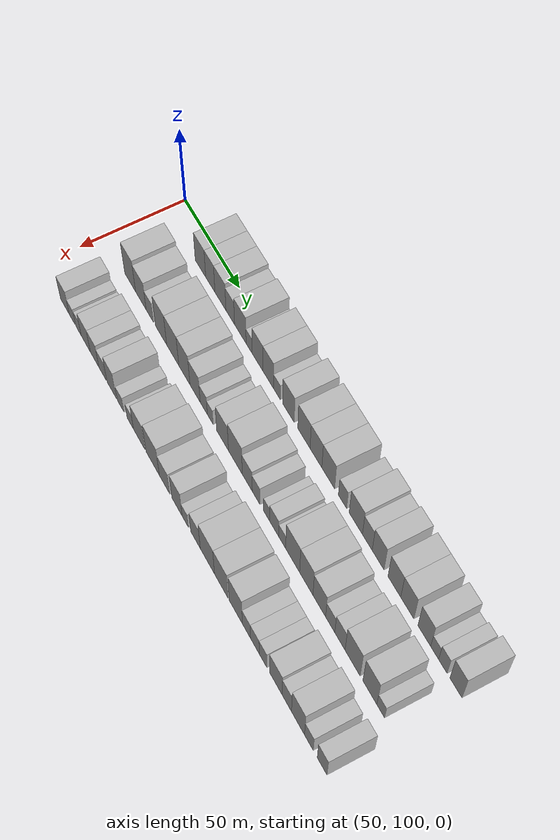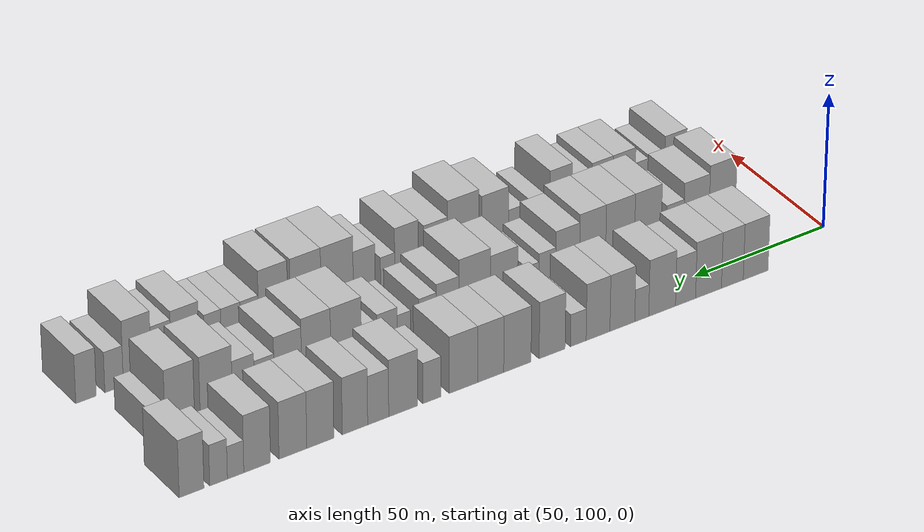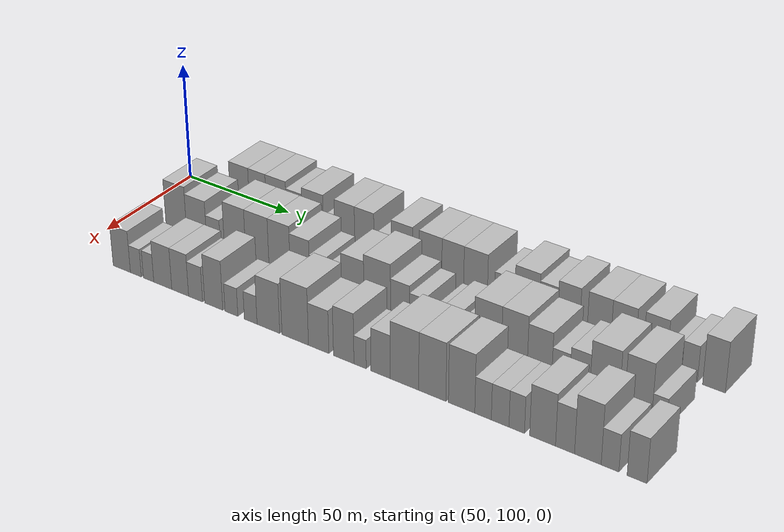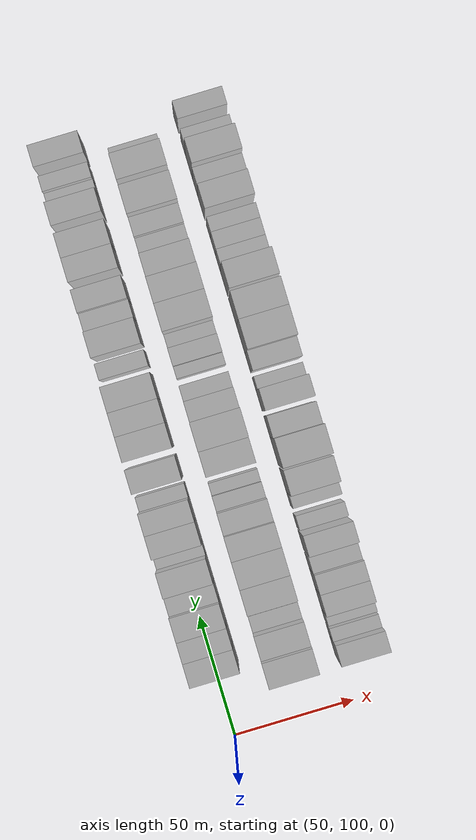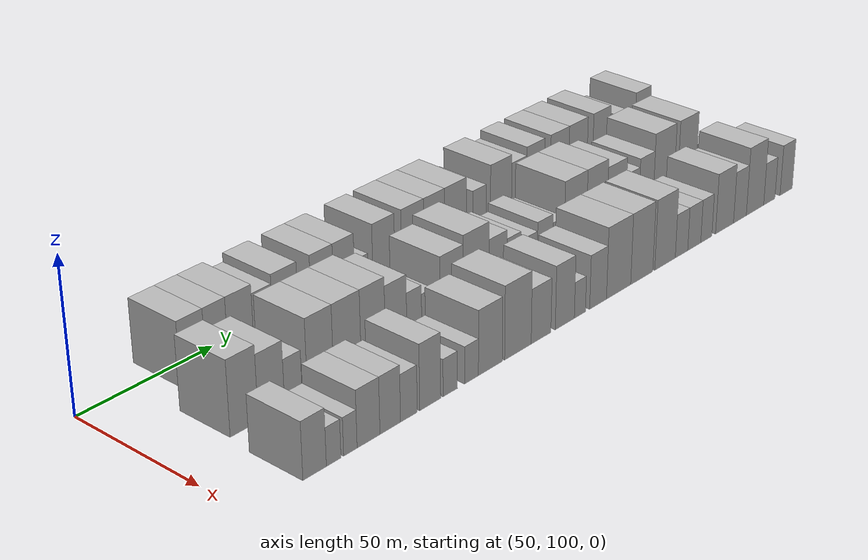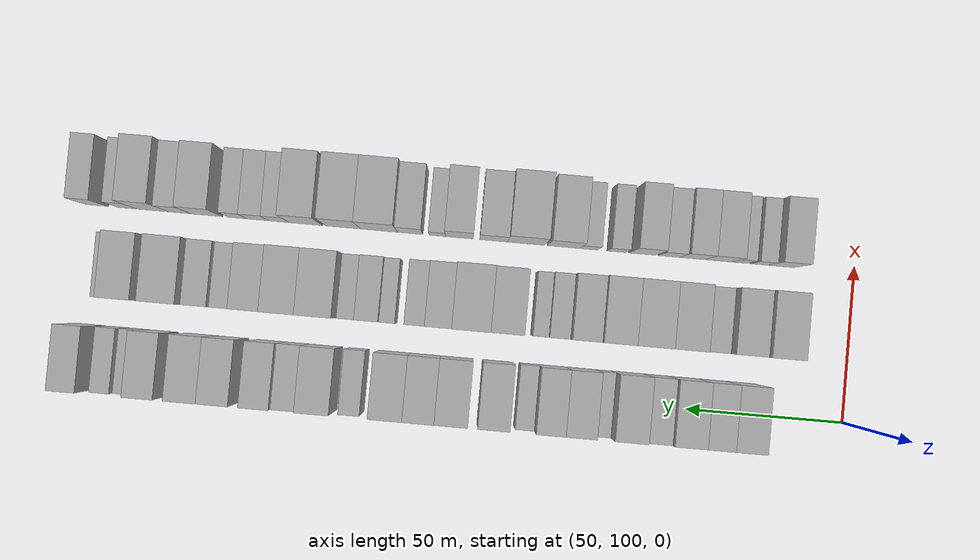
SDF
<sdf version="1.6">
 <world name="default">
  <model name="building_49">
   <static>1</static>
   <pose>50.0000 133.7880 0 0.000000 0.000000 0.000000</pose>
   <link name="link">
    <pose>0 0 10.50 0 0 0</pose>
    <collision name="collision"><geometry><box><size>20.0000 9.5616 21.0000</size></box></geometry></collision>
    <visual name="visual">
     <cast_shadows>0</cast_shadows>
     <geometry><box><size>20.0000 9.5616 21.0000</size></box></geometry>
     <material>
      <script>
       <uri>model://HANNAS_wall/materials/scripts</uri>
       <uri>model://HANNAS_wall/materials/textures</uri>
       <name>vrc/HANNAS_wall</name>
      </script>
     </material>
    </visual>
   </link>
  </model>
  <model name="building_50">
   <static>1</static>
   <pose>50.0000 142.7732 0 0.000000 0.000000 0.000000</pose>
   <link name="link">
    <pose>0 0 10.50 0 0 0</pose>
    <collision name="collision"><geometry><box><size>20.0000 8.4089 21.0000</size></box></geometry></collision>
    <visual name="visual">
     <cast_shadows>0</cast_shadows>
     <geometry><box><size>20.0000 8.4089 21.0000</size></box></geometry>
     <material>
      <script>
       <uri>model://HANNAS_wall/materials/scripts</uri>
       <uri>model://HANNAS_wall/materials/textures</uri>
       <name>vrc/HANNAS_wall</name>
      </script>
     </material>
    </visual>
   </link>
  </model>
  <model name="building_51">
   <static>1</static>
   <pose>50.0000 151.9215 0 0.000000 0.000000 0.000000</pose>
   <link name="link">
    <pose>0 0 10.50 0 0 0</pose>
    <collision name="collision"><geometry><box><size>20.0000 9.8877 21.0000</size></box></geometry></collision>
    <visual name="visual">
     <cast_shadows>0</cast_shadows>
     <geometry><box><size>20.0000 9.8877 21.0000</size></box></geometry>
     <material>
      <script>
       <uri>model://HANNAS_wall/materials/scripts</uri>
       <uri>model://HANNAS_wall/materials/textures</uri>
       <name>vrc/HANNAS_wall</name>
      </script>
     </material>
    </visual>
   </link>
  </model>
  <model name="building_52">
   <static>1</static>
   <pose>50.0000 160.6932 0 0.000000 0.000000 0.000000</pose>
   <link name="link">
    <pose>0 0 9.00 0 0 0</pose>
    <collision name="collision"><geometry><box><size>20.0000 7.6557 18.0000</size></box></geometry></collision>
    <visual name="visual">
     <cast_shadows>0</cast_shadows>
     <geometry><box><size>20.0000 7.6557 18.0000</size></box></geometry>
     <material>
      <script>
       <uri>model://HANNAS_wall/materials/scripts</uri>
       <uri>model://HANNAS_wall/materials/textures</uri>
       <name>vrc/HANNAS_wall</name>
      </script>
     </material>
    </visual>
   </link>
  </model>
  <model name="building_53">
   <static>1</static>
   <pose>50.0000 169.5946 0 0.000000 0.000000 0.000000</pose>
   <link name="link">
    <pose>0 0 10.50 0 0 0</pose>
    <collision name="collision"><geometry><box><size>20.0000 10.1472 21.0000</size></box></geometry></collision>
    <visual name="visual">
     <cast_shadows>0</cast_shadows>
     <geometry><box><size>20.0000 10.1472 21.0000</size></box></geometry>
     <material>
      <script>
       <uri>model://HANNAS_wall/materials/scripts</uri>
       <uri>model://HANNAS_wall/materials/textures</uri>
       <name>vrc/HANNAS_wall</name>
      </script>
     </material>
    </visual>
   </link>
  </model>
  <model name="building_54">
   <static>1</static>
   <pose>50.0000 177.3103 0 0.000000 0.000000 0.000000</pose>
   <link name="link">
    <pose>0 0 6.00 0 0 0</pose>
    <collision name="collision"><geometry><box><size>20.0000 5.2841 12.0000</size></box></geometry></collision>
    <visual name="visual">
     <cast_shadows>0</cast_shadows>
     <geometry><box><size>20.0000 5.2841 12.0000</size></box></geometry>
     <material>
      <script>
       <uri>model://HANNAS_wall/materials/scripts</uri>
       <uri>model://HANNAS_wall/materials/textures</uri>
       <name>vrc/HANNAS_wall</name>
      </script>
     </material>
    </visual>
   </link>
  </model>
  <model name="building_55">
   <static>1</static>
   <pose>50.0000 184.6372 0 0.000000 0.000000 0.000000</pose>
   <link name="link">
    <pose>0 0 10.50 0 0 0</pose>
    <collision name="collision"><geometry><box><size>20.0000 9.3697 21.0000</size></box></geometry></collision>
    <visual name="visual">
     <cast_shadows>0</cast_shadows>
     <geometry><box><size>20.0000 9.3697 21.0000</size></box></geometry>
     <material>
      <script>
       <uri>model://HANNAS_wall/materials/scripts</uri>
       <uri>model://HANNAS_wall/materials/textures</uri>
       <name>vrc/HANNAS_wall</name>
      </script>
     </material>
    </visual>
   </link>
  </model>
  <model name="building_56">
   <static>1</static>
   <pose>50.0000 193.7785 0 0.000000 0.000000 0.000000</pose>
   <link name="link">
    <pose>0 0 10.50 0 0 0</pose>
    <collision name="collision"><geometry><box><size>20.0000 8.9130 21.0000</size></box></geometry></collision>
    <visual name="visual">
     <cast_shadows>0</cast_shadows>
     <geometry><box><size>20.0000 8.9130 21.0000</size></box></geometry>
     <material>
      <script>
       <uri>model://HANNAS_wall/materials/scripts</uri>
       <uri>model://HANNAS_wall/materials/textures</uri>
       <name>vrc/HANNAS_wall</name>
      </script>
     </material>
    </visual>
   </link>
  </model>
  <model name="building_57">
   <static>1</static>
   <pose>50.0000 201.1518 0 0.000000 0.000000 0.000000</pose>
   <link name="link">
    <pose>0 0 6.00 0 0 0</pose>
    <collision name="collision"><geometry><box><size>20.0000 5.8336 12.0000</size></box></geometry></collision>
    <visual name="visual">
     <cast_shadows>0</cast_shadows>
     <geometry><box><size>20.0000 5.8336 12.0000</size></box></geometry>
     <material>
      <script>
       <uri>model://HANNAS_wall/materials/scripts</uri>
       <uri>model://HANNAS_wall/materials/textures</uri>
       <name>vrc/HANNAS_wall</name>
      </script>
     </material>
    </visual>
   </link>
  </model>
  <model name="building_58">
   <static>1</static>
   <pose>50.0000 210.8988 0 0.000000 0.000000 0.000000</pose>
   <link name="link">
    <pose>0 0 10.50 0 0 0</pose>
    <collision name="collision"><geometry><box><size>20.0000 9.6604 21.0000</size></box></geometry></collision>
    <visual name="visual">
     <cast_shadows>0</cast_shadows>
     <geometry><box><size>20.0000 9.6604 21.0000</size></box></geometry>
     <material>
      <script>
       <uri>model://HANNAS_wall/materials/scripts</uri>
       <uri>model://HANNAS_wall/materials/textures</uri>
       <name>vrc/HANNAS_wall</name>
      </script>
     </material>
    </visual>
   </link>
  </model>
  <model name="building_59">
   <static>1</static>
   <pose>50.0000 223.7719 0 0.000000 0.000000 0.000000</pose>
   <link name="link">
    <pose>0 0 10.50 0 0 0</pose>
    <collision name="collision"><geometry><box><size>20.0000 10.0858 21.0000</size></box></geometry></collision>
    <visual name="visual">
     <cast_shadows>0</cast_shadows>
     <geometry><box><size>20.0000 10.0858 21.0000</size></box></geometry>
     <material>
      <script>
       <uri>model://HANNAS_wall/materials/scripts</uri>
       <uri>model://HANNAS_wall/materials/textures</uri>
       <name>vrc/HANNAS_wall</name>
      </script>
     </material>
    </visual>
   </link>
  </model>
  <model name="building_60">
   <static>1</static>
   <pose>50.0000 233.6276 0 0.000000 0.000000 0.000000</pose>
   <link name="link">
    <pose>0 0 10.50 0 0 0</pose>
    <collision name="collision"><geometry><box><size>20.0000 9.6257 21.0000</size></box></geometry></collision>
    <visual name="visual">
     <cast_shadows>0</cast_shadows>
     <geometry><box><size>20.0000 9.6257 21.0000</size></box></geometry>
     <material>
      <script>
       <uri>model://HANNAS_wall/materials/scripts</uri>
       <uri>model://HANNAS_wall/materials/textures</uri>
       <name>vrc/HANNAS_wall</name>
      </script>
     </material>
    </visual>
   </link>
  </model>
  <model name="building_61">
   <static>1</static>
   <pose>50.0000 243.5973 0 0.000000 0.000000 0.000000</pose>
   <link name="link">
    <pose>0 0 10.50 0 0 0</pose>
    <collision name="collision"><geometry><box><size>20.0000 10.3136 21.0000</size></box></geometry></collision>
    <visual name="visual">
     <cast_shadows>0</cast_shadows>
     <geometry><box><size>20.0000 10.3136 21.0000</size></box></geometry>
     <material>
      <script>
       <uri>model://HANNAS_wall/materials/scripts</uri>
       <uri>model://HANNAS_wall/materials/textures</uri>
       <name>vrc/HANNAS_wall</name>
      </script>
     </material>
    </visual>
   </link>
  </model>
  <model name="building_62">
   <static>1</static>
   <pose>50.0000 255.0372 0 0.000000 0.000000 0.000000</pose>
   <link name="link">
    <pose>0 0 7.50 0 0 0</pose>
    <collision name="collision"><geometry><box><size>20.0000 6.5662 15.0000</size></box></geometry></collision>
    <visual name="visual">
     <cast_shadows>0</cast_shadows>
     <geometry><box><size>20.0000 6.5662 15.0000</size></box></geometry>
     <material>
      <script>
       <uri>model://HANNAS_wall/materials/scripts</uri>
       <uri>model://HANNAS_wall/materials/textures</uri>
       <name>vrc/HANNAS_wall</name>
      </script>
     </material>
    </visual>
   </link>
  </model>
  <model name="building_63">
   <static>1</static>
   <pose>50.0000 265.5220 0 0.000000 0.000000 0.000000</pose>
   <link name="link">
    <pose>0 0 10.50 0 0 0</pose>
    <collision name="collision"><geometry><box><size>20.0000 10.4033 21.0000</size></box></geometry></collision>
    <visual name="visual">
     <cast_shadows>0</cast_shadows>
     <geometry><box><size>20.0000 10.4033 21.0000</size></box></geometry>
     <material>
      <script>
       <uri>model://HANNAS_wall/materials/scripts</uri>
       <uri>model://HANNAS_wall/materials/textures</uri>
       <name>vrc/HANNAS_wall</name>
      </script>
     </material>
    </visual>
   </link>
  </model>
  <model name="building_64">
   <static>1</static>
   <pose>50.0000 274.5095 0 0.000000 0.000000 0.000000</pose>
   <link name="link">
    <pose>0 0 9.00 0 0 0</pose>
    <collision name="collision"><geometry><box><size>20.0000 7.5716 18.0000</size></box></geometry></collision>
    <visual name="visual">
     <cast_shadows>0</cast_shadows>
     <geometry><box><size>20.0000 7.5716 18.0000</size></box></geometry>
     <material>
      <script>
       <uri>model://HANNAS_wall/materials/scripts</uri>
       <uri>model://HANNAS_wall/materials/textures</uri>
       <name>vrc/HANNAS_wall</name>
      </script>
     </material>
    </visual>
   </link>
  </model>
  <model name="building_65">
   <static>1</static>
   <pose>50.0000 282.8512 0 0.000000 0.000000 0.000000</pose>
   <link name="link">
    <pose>0 0 10.50 0 0 0</pose>
    <collision name="collision"><geometry><box><size>20.0000 9.1119 21.0000</size></box></geometry></collision>
    <visual name="visual">
     <cast_shadows>0</cast_shadows>
     <geometry><box><size>20.0000 9.1119 21.0000</size></box></geometry>
     <material>
      <script>
       <uri>model://HANNAS_wall/materials/scripts</uri>
       <uri>model://HANNAS_wall/materials/textures</uri>
       <name>vrc/HANNAS_wall</name>
      </script>
     </material>
    </visual>
   </link>
  </model>
  <model name="building_66">
   <static>1</static>
   <pose>50.0000 295.2261 0 0.000000 0.000000 0.000000</pose>
   <link name="link">
    <pose>0 0 10.50 0 0 0</pose>
    <collision name="collision"><geometry><box><size>20.0000 9.6378 21.0000</size></box></geometry></collision>
    <visual name="visual">
     <cast_shadows>0</cast_shadows>
     <geometry><box><size>20.0000 9.6378 21.0000</size></box></geometry>
     <material>
      <script>
       <uri>model://HANNAS_wall/materials/scripts</uri>
       <uri>model://HANNAS_wall/materials/textures</uri>
       <name>vrc/HANNAS_wall</name>
      </script>
     </material>
    </visual>
   </link>
  </model>
  <model name="building_67">
   <static>1</static>
   <pose>50.0000 304.9630 0 0.000000 0.000000 0.000000</pose>
   <link name="link">
    <pose>0 0 10.50 0 0 0</pose>
    <collision name="collision"><geometry><box><size>20.0000 9.8360 21.0000</size></box></geometry></collision>
    <visual name="visual">
     <cast_shadows>0</cast_shadows>
     <geometry><box><size>20.0000 9.8360 21.0000</size></box></geometry>
     <material>
      <script>
       <uri>model://HANNAS_wall/materials/scripts</uri>
       <uri>model://HANNAS_wall/materials/textures</uri>
       <name>vrc/HANNAS_wall</name>
      </script>
     </material>
    </visual>
   </link>
  </model>
  <model name="building_68">
   <static>1</static>
   <pose>50.0000 317.5712 0 0.000000 0.000000 0.000000</pose>
   <link name="link">
    <pose>0 0 10.50 0 0 0</pose>
    <collision name="collision"><geometry><box><size>20.0000 9.3803 21.0000</size></box></geometry></collision>
    <visual name="visual">
     <cast_shadows>0</cast_shadows>
     <geometry><box><size>20.0000 9.3803 21.0000</size></box></geometry>
     <material>
      <script>
       <uri>model://HANNAS_wall/materials/scripts</uri>
       <uri>model://HANNAS_wall/materials/textures</uri>
       <name>vrc/HANNAS_wall</name>
      </script>
     </material>
    </visual>
   </link>
  </model>
  <model name="building_69">
   <static>1</static>
   <pose>50.0000 325.1428 0 0.000000 0.000000 0.000000</pose>
   <link name="link">
    <pose>0 0 6.00 0 0 0</pose>
    <collision name="collision"><geometry><box><size>20.0000 5.7629 12.0000</size></box></geometry></collision>
    <visual name="visual">
     <cast_shadows>0</cast_shadows>
     <geometry><box><size>20.0000 5.7629 12.0000</size></box></geometry>
     <material>
      <script>
       <uri>model://HANNAS_wall/materials/scripts</uri>
       <uri>model://HANNAS_wall/materials/textures</uri>
       <name>vrc/HANNAS_wall</name>
      </script>
     </material>
    </visual>
   </link>
  </model>
  <model name="building_70">
   <static>1</static>
   <pose>50.0000 331.1124 0 0.000000 0.000000 0.000000</pose>
   <link name="link">
    <pose>0 0 7.50 0 0 0</pose>
    <collision name="collision"><geometry><box><size>20.0000 6.1764 15.0000</size></box></geometry></collision>
    <visual name="visual">
     <cast_shadows>0</cast_shadows>
     <geometry><box><size>20.0000 6.1764 15.0000</size></box></geometry>
     <material>
      <script>
       <uri>model://HANNAS_wall/materials/scripts</uri>
       <uri>model://HANNAS_wall/materials/textures</uri>
       <name>vrc/HANNAS_wall</name>
      </script>
     </material>
    </visual>
   </link>
  </model>
  <model name="building_71">
   <static>1</static>
   <pose>50.0000 340.5197 0 0.000000 0.000000 0.000000</pose>
   <link name="link">
    <pose>0 0 10.50 0 0 0</pose>
    <collision name="collision"><geometry><box><size>20.0000 8.6381 21.0000</size></box></geometry></collision>
    <visual name="visual">
     <cast_shadows>0</cast_shadows>
     <geometry><box><size>20.0000 8.6381 21.0000</size></box></geometry>
     <material>
      <script>
       <uri>model://HANNAS_wall/materials/scripts</uri>
       <uri>model://HANNAS_wall/materials/textures</uri>
       <name>vrc/HANNAS_wall</name>
      </script>
     </material>
    </visual>
   </link>
  </model>
  <model name="building_125">
   <static>1</static>
   <pose>79.0000 125.9380 0 0.000000 0.000000 0.000000</pose>
   <link name="link">
    <pose>0 0 12.00 0 0 0</pose>
    <collision name="collision"><geometry><box><size>20.0000 10.3051 24.0000</size></box></geometry></collision>
    <visual name="visual">
     <cast_shadows>0</cast_shadows>
     <geometry><box><size>20.0000 10.3051 24.0000</size></box></geometry>
     <material>
      <script>
       <uri>model://HANNAS_wall/materials/scripts</uri>
       <uri>model://HANNAS_wall/materials/textures</uri>
       <name>vrc/HANNAS_wall</name>
      </script>
     </material>
    </visual>
   </link>
  </model>
  <model name="building_126">
   <static>1</static>
   <pose>79.0000 136.0108 0 0.000000 0.000000 0.000000</pose>
   <link name="link">
    <pose>0 0 10.50 0 0 0</pose>
    <collision name="collision"><geometry><box><size>20.0000 9.8404 21.0000</size></box></geometry></collision>
    <visual name="visual">
     <cast_shadows>0</cast_shadows>
     <geometry><box><size>20.0000 9.8404 21.0000</size></box></geometry>
     <material>
      <script>
       <uri>model://HANNAS_wall/materials/scripts</uri>
       <uri>model://HANNAS_wall/materials/textures</uri>
       <name>vrc/HANNAS_wall</name>
      </script>
     </material>
    </visual>
   </link>
  </model>
  <model name="building_127">
   <static>1</static>
   <pose>79.0000 144.2754 0 0.000000 0.000000 0.000000</pose>
   <link name="link">
    <pose>0 0 7.50 0 0 0</pose>
    <collision name="collision"><geometry><box><size>20.0000 6.6889 15.0000</size></box></geometry></collision>
    <visual name="visual">
     <cast_shadows>0</cast_shadows>
     <geometry><box><size>20.0000 6.6889 15.0000</size></box></geometry>
     <material>
      <script>
       <uri>model://HANNAS_wall/materials/scripts</uri>
       <uri>model://HANNAS_wall/materials/textures</uri>
       <name>vrc/HANNAS_wall</name>
      </script>
     </material>
    </visual>
   </link>
  </model>
  <model name="building_128">
   <static>1</static>
   <pose>79.0000 154.7513 0 0.000000 0.000000 0.000000</pose>
   <link name="link">
    <pose>0 0 12.00 0 0 0</pose>
    <collision name="collision"><geometry><box><size>20.0000 10.2628 24.0000</size></box></geometry></collision>
    <visual name="visual">
     <cast_shadows>0</cast_shadows>
     <geometry><box><size>20.0000 10.2628 24.0000</size></box></geometry>
     <material>
      <script>
       <uri>model://HANNAS_wall/materials/scripts</uri>
       <uri>model://HANNAS_wall/materials/textures</uri>
       <name>vrc/HANNAS_wall</name>
      </script>
     </material>
    </visual>
   </link>
  </model>
  <model name="building_129">
   <static>1</static>
   <pose>79.0000 165.3907 0 0.000000 0.000000 0.000000</pose>
   <link name="link">
    <pose>0 0 12.00 0 0 0</pose>
    <collision name="collision"><geometry><box><size>20.0000 11.0159 24.0000</size></box></geometry></collision>
    <visual name="visual">
     <cast_shadows>0</cast_shadows>
     <geometry><box><size>20.0000 11.0159 24.0000</size></box></geometry>
     <material>
      <script>
       <uri>model://HANNAS_wall/materials/scripts</uri>
       <uri>model://HANNAS_wall/materials/textures</uri>
       <name>vrc/HANNAS_wall</name>
      </script>
     </material>
    </visual>
   </link>
  </model>
  <model name="building_130">
   <static>1</static>
   <pose>79.0000 175.8826 0 0.000000 0.000000 0.000000</pose>
   <link name="link">
    <pose>0 0 12.00 0 0 0</pose>
    <collision name="collision"><geometry><box><size>20.0000 9.9679 24.0000</size></box></geometry></collision>
    <visual name="visual">
     <cast_shadows>0</cast_shadows>
     <geometry><box><size>20.0000 9.9679 24.0000</size></box></geometry>
     <material>
      <script>
       <uri>model://HANNAS_wall/materials/scripts</uri>
       <uri>model://HANNAS_wall/materials/textures</uri>
       <name>vrc/HANNAS_wall</name>
      </script>
     </material>
    </visual>
   </link>
  </model>
  <model name="building_131">
   <static>1</static>
   <pose>79.0000 185.3609 0 0.000000 0.000000 0.000000</pose>
   <link name="link">
    <pose>0 0 10.50 0 0 0</pose>
    <collision name="collision"><geometry><box><size>20.0000 8.9887 21.0000</size></box></geometry></collision>
    <visual name="visual">
     <cast_shadows>0</cast_shadows>
     <geometry><box><size>20.0000 8.9887 21.0000</size></box></geometry>
     <material>
      <script>
       <uri>model://HANNAS_wall/materials/scripts</uri>
       <uri>model://HANNAS_wall/materials/textures</uri>
       <name>vrc/HANNAS_wall</name>
      </script>
     </material>
    </visual>
   </link>
  </model>
  <model name="building_132">
   <static>1</static>
   <pose>79.0000 193.0221 0 0.000000 0.000000 0.000000</pose>
   <link name="link">
    <pose>0 0 7.50 0 0 0</pose>
    <collision name="collision"><geometry><box><size>20.0000 6.3335 15.0000</size></box></geometry></collision>
    <visual name="visual">
     <cast_shadows>0</cast_shadows>
     <geometry><box><size>20.0000 6.3335 15.0000</size></box></geometry>
     <material>
      <script>
       <uri>model://HANNAS_wall/materials/scripts</uri>
       <uri>model://HANNAS_wall/materials/textures</uri>
       <name>vrc/HANNAS_wall</name>
      </script>
     </material>
    </visual>
   </link>
  </model>
  <model name="building_133">
   <static>1</static>
   <pose>79.0000 198.6765 0 0.000000 0.000000 0.000000</pose>
   <link name="link">
    <pose>0 0 6.00 0 0 0</pose>
    <collision name="collision"><geometry><box><size>20.0000 4.9754 12.0000</size></box></geometry></collision>
    <visual name="visual">
     <cast_shadows>0</cast_shadows>
     <geometry><box><size>20.0000 4.9754 12.0000</size></box></geometry>
     <material>
      <script>
       <uri>model://HANNAS_wall/materials/scripts</uri>
       <uri>model://HANNAS_wall/materials/textures</uri>
       <name>vrc/HANNAS_wall</name>
      </script>
     </material>
    </visual>
   </link>
  </model>
  <model name="building_134">
   <static>1</static>
   <pose>79.0000 209.2695 0 0.000000 0.000000 0.000000</pose>
   <link name="link">
    <pose>0 0 10.50 0 0 0</pose>
    <collision name="collision"><geometry><box><size>20.0000 10.2107 21.0000</size></box></geometry></collision>
    <visual name="visual">
     <cast_shadows>0</cast_shadows>
     <geometry><box><size>20.0000 10.2107 21.0000</size></box></geometry>
     <material>
      <script>
       <uri>model://HANNAS_wall/materials/scripts</uri>
       <uri>model://HANNAS_wall/materials/textures</uri>
       <name>vrc/HANNAS_wall</name>
      </script>
     </material>
    </visual>
   </link>
  </model>
  <model name="building_135">
   <static>1</static>
   <pose>79.0000 220.2310 0 0.000000 0.000000 0.000000</pose>
   <link name="link">
    <pose>0 0 12.00 0 0 0</pose>
    <collision name="collision"><geometry><box><size>20.0000 11.7123 24.0000</size></box></geometry></collision>
    <visual name="visual">
     <cast_shadows>0</cast_shadows>
     <geometry><box><size>20.0000 11.7123 24.0000</size></box></geometry>
     <material>
      <script>
       <uri>model://HANNAS_wall/materials/scripts</uri>
       <uri>model://HANNAS_wall/materials/textures</uri>
       <name>vrc/HANNAS_wall</name>
      </script>
     </material>
    </visual>
   </link>
  </model>
  <model name="building_136">
   <static>1</static>
   <pose>79.0000 230.2468 0 0.000000 0.000000 0.000000</pose>
   <link name="link">
    <pose>0 0 9.00 0 0 0</pose>
    <collision name="collision"><geometry><box><size>20.0000 8.3191 18.0000</size></box></geometry></collision>
    <visual name="visual">
     <cast_shadows>0</cast_shadows>
     <geometry><box><size>20.0000 8.3191 18.0000</size></box></geometry>
     <material>
      <script>
       <uri>model://HANNAS_wall/materials/scripts</uri>
       <uri>model://HANNAS_wall/materials/textures</uri>
       <name>vrc/HANNAS_wall</name>
      </script>
     </material>
    </visual>
   </link>
  </model>
  <model name="building_137">
   <static>1</static>
   <pose>79.0000 237.6032 0 0.000000 0.000000 0.000000</pose>
   <link name="link">
    <pose>0 0 7.50 0 0 0</pose>
    <collision name="collision"><geometry><box><size>20.0000 6.3937 15.0000</size></box></geometry></collision>
    <visual name="visual">
     <cast_shadows>0</cast_shadows>
     <geometry><box><size>20.0000 6.3937 15.0000</size></box></geometry>
     <material>
      <script>
       <uri>model://HANNAS_wall/materials/scripts</uri>
       <uri>model://HANNAS_wall/materials/textures</uri>
       <name>vrc/HANNAS_wall</name>
      </script>
     </material>
    </visual>
   </link>
  </model>
  <model name="building_138">
   <static>1</static>
   <pose>79.0000 246.2719 0 0.000000 0.000000 0.000000</pose>
   <link name="link">
    <pose>0 0 6.00 0 0 0</pose>
    <collision name="collision"><geometry><box><size>20.0000 4.9438 12.0000</size></box></geometry></collision>
    <visual name="visual">
     <cast_shadows>0</cast_shadows>
     <geometry><box><size>20.0000 4.9438 12.0000</size></box></geometry>
     <material>
      <script>
       <uri>model://HANNAS_wall/materials/scripts</uri>
       <uri>model://HANNAS_wall/materials/textures</uri>
       <name>vrc/HANNAS_wall</name>
      </script>
     </material>
    </visual>
   </link>
  </model>
  <model name="building_139">
   <static>1</static>
   <pose>79.0000 252.4389 0 0.000000 0.000000 0.000000</pose>
   <link name="link">
    <pose>0 0 7.50 0 0 0</pose>
    <collision name="collision"><geometry><box><size>20.0000 7.3902 15.0000</size></box></geometry></collision>
    <visual name="visual">
     <cast_shadows>0</cast_shadows>
     <geometry><box><size>20.0000 7.3902 15.0000</size></box></geometry>
     <material>
      <script>
       <uri>model://HANNAS_wall/materials/scripts</uri>
       <uri>model://HANNAS_wall/materials/textures</uri>
       <name>vrc/HANNAS_wall</name>
      </script>
     </material>
    </visual>
   </link>
  </model>
  <model name="building_140">
   <static>1</static>
   <pose>79.0000 258.9842 0 0.000000 0.000000 0.000000</pose>
   <link name="link">
    <pose>0 0 6.00 0 0 0</pose>
    <collision name="collision"><geometry><box><size>20.0000 5.7004 12.0000</size></box></geometry></collision>
    <visual name="visual">
     <cast_shadows>0</cast_shadows>
     <geometry><box><size>20.0000 5.7004 12.0000</size></box></geometry>
     <material>
      <script>
       <uri>model://HANNAS_wall/materials/scripts</uri>
       <uri>model://HANNAS_wall/materials/textures</uri>
       <name>vrc/HANNAS_wall</name>
      </script>
     </material>
    </visual>
   </link>
  </model>
  <model name="building_141">
   <static>1</static>
   <pose>79.0000 267.4060 0 0.000000 0.000000 0.000000</pose>
   <link name="link">
    <pose>0 0 12.00 0 0 0</pose>
    <collision name="collision"><geometry><box><size>20.0000 11.1433 24.0000</size></box></geometry></collision>
    <visual name="visual">
     <cast_shadows>0</cast_shadows>
     <geometry><box><size>20.0000 11.1433 24.0000</size></box></geometry>
     <material>
      <script>
       <uri>model://HANNAS_wall/materials/scripts</uri>
       <uri>model://HANNAS_wall/materials/textures</uri>
       <name>vrc/HANNAS_wall</name>
      </script>
     </material>
    </visual>
   </link>
  </model>
  <model name="building_142">
   <static>1</static>
   <pose>79.0000 278.2455 0 0.000000 0.000000 0.000000</pose>
   <link name="link">
    <pose>0 0 12.00 0 0 0</pose>
    <collision name="collision"><geometry><box><size>20.0000 10.5357 24.0000</size></box></geometry></collision>
    <visual name="visual">
     <cast_shadows>0</cast_shadows>
     <geometry><box><size>20.0000 10.5357 24.0000</size></box></geometry>
     <material>
      <script>
       <uri>model://HANNAS_wall/materials/scripts</uri>
       <uri>model://HANNAS_wall/materials/textures</uri>
       <name>vrc/HANNAS_wall</name>
      </script>
     </material>
    </visual>
   </link>
  </model>
  <model name="building_143">
   <static>1</static>
   <pose>79.0000 288.4336 0 0.000000 0.000000 0.000000</pose>
   <link name="link">
    <pose>0 0 10.50 0 0 0</pose>
    <collision name="collision"><geometry><box><size>20.0000 9.8405 21.0000</size></box></geometry></collision>
    <visual name="visual">
     <cast_shadows>0</cast_shadows>
     <geometry><box><size>20.0000 9.8405 21.0000</size></box></geometry>
     <material>
      <script>
       <uri>model://HANNAS_wall/materials/scripts</uri>
       <uri>model://HANNAS_wall/materials/textures</uri>
       <name>vrc/HANNAS_wall</name>
      </script>
     </material>
    </visual>
   </link>
  </model>
  <model name="building_144">
   <static>1</static>
   <pose>79.0000 296.9004 0 0.000000 0.000000 0.000000</pose>
   <link name="link">
    <pose>0 0 7.50 0 0 0</pose>
    <collision name="collision"><geometry><box><size>20.0000 7.0930 15.0000</size></box></geometry></collision>
    <visual name="visual">
     <cast_shadows>0</cast_shadows>
     <geometry><box><size>20.0000 7.0930 15.0000</size></box></geometry>
     <material>
      <script>
       <uri>model://HANNAS_wall/materials/scripts</uri>
       <uri>model://HANNAS_wall/materials/textures</uri>
       <name>vrc/HANNAS_wall</name>
      </script>
     </material>
    </visual>
   </link>
  </model>
  <model name="building_145">
   <static>1</static>
   <pose>79.0000 304.3658 0 0.000000 0.000000 0.000000</pose>
   <link name="link">
    <pose>0 0 9.00 0 0 0</pose>
    <collision name="collision"><geometry><box><size>20.0000 7.8379 18.0000</size></box></geometry></collision>
    <visual name="visual">
     <cast_shadows>0</cast_shadows>
     <geometry><box><size>20.0000 7.8379 18.0000</size></box></geometry>
     <material>
      <script>
       <uri>model://HANNAS_wall/materials/scripts</uri>
       <uri>model://HANNAS_wall/materials/textures</uri>
       <name>vrc/HANNAS_wall</name>
      </script>
     </material>
    </visual>
   </link>
  </model>
  <model name="building_146">
   <static>1</static>
   <pose>79.0000 313.9953 0 0.000000 0.000000 0.000000</pose>
   <link name="link">
    <pose>0 0 12.00 0 0 0</pose>
    <collision name="collision"><geometry><box><size>20.0000 11.4211 24.0000</size></box></geometry></collision>
    <visual name="visual">
     <cast_shadows>0</cast_shadows>
     <geometry><box><size>20.0000 11.4211 24.0000</size></box></geometry>
     <material>
      <script>
       <uri>model://HANNAS_wall/materials/scripts</uri>
       <uri>model://HANNAS_wall/materials/textures</uri>
       <name>vrc/HANNAS_wall</name>
      </script>
     </material>
    </visual>
   </link>
  </model>
  <model name="building_147">
   <static>1</static>
   <pose>79.0000 326.8883 0 0.000000 0.000000 0.000000</pose>
   <link name="link">
    <pose>0 0 12.00 0 0 0</pose>
    <collision name="collision"><geometry><box><size>20.0000 10.3649 24.0000</size></box></geometry></collision>
    <visual name="visual">
     <cast_shadows>0</cast_shadows>
     <geometry><box><size>20.0000 10.3649 24.0000</size></box></geometry>
     <material>
      <script>
       <uri>model://HANNAS_wall/materials/scripts</uri>
       <uri>model://HANNAS_wall/materials/textures</uri>
       <name>vrc/HANNAS_wall</name>
      </script>
     </material>
    </visual>
   </link>
  </model>
  <model name="building_148">
   <static>1</static>
   <pose>79.0000 334.9313 0 0.000000 0.000000 0.000000</pose>
   <link name="link">
    <pose>0 0 6.00 0 0 0</pose>
    <collision name="collision"><geometry><box><size>20.0000 5.7211 12.0000</size></box></geometry></collision>
    <visual name="visual">
     <cast_shadows>0</cast_shadows>
     <geometry><box><size>20.0000 5.7211 12.0000</size></box></geometry>
     <material>
      <script>
       <uri>model://HANNAS_wall/materials/scripts</uri>
       <uri>model://HANNAS_wall/materials/textures</uri>
       <name>vrc/HANNAS_wall</name>
      </script>
     </material>
    </visual>
   </link>
  </model>
  <model name="building_193">
   <static>1</static>
   <pose>108.0000 123.5994 0 0.000000 0.000000 0.000000</pose>
   <link name="link">
    <pose>0 0 9.00 0 0 0</pose>
    <collision name="collision"><geometry><box><size>20.0000 8.5537 18.0000</size></box></geometry></collision>
    <visual name="visual">
     <cast_shadows>0</cast_shadows>
     <geometry><box><size>20.0000 8.5537 18.0000</size></box></geometry>
     <material>
      <script>
       <uri>model://HANNAS_wall/materials/scripts</uri>
       <uri>model://HANNAS_wall/materials/textures</uri>
       <name>vrc/HANNAS_wall</name>
      </script>
     </material>
    </visual>
   </link>
  </model>
  <model name="building_194">
   <static>1</static>
   <pose>108.0000 130.5719 0 0.000000 0.000000 0.000000</pose>
   <link name="link">
    <pose>0 0 6.00 0 0 0</pose>
    <collision name="collision"><geometry><box><size>20.0000 5.3914 12.0000</size></box></geometry></collision>
    <visual name="visual">
     <cast_shadows>0</cast_shadows>
     <geometry><box><size>20.0000 5.3914 12.0000</size></box></geometry>
     <material>
      <script>
       <uri>model://HANNAS_wall/materials/scripts</uri>
       <uri>model://HANNAS_wall/materials/textures</uri>
       <name>vrc/HANNAS_wall</name>
      </script>
     </material>
    </visual>
   </link>
  </model>
  <model name="building_195">
   <static>1</static>
   <pose>108.0000 136.7985 0 0.000000 0.000000 0.000000</pose>
   <link name="link">
    <pose>0 0 6.00 0 0 0</pose>
    <collision name="collision"><geometry><box><size>20.0000 5.0616 12.0000</size></box></geometry></collision>
    <visual name="visual">
     <cast_shadows>0</cast_shadows>
     <geometry><box><size>20.0000 5.0616 12.0000</size></box></geometry>
     <material>
      <script>
       <uri>model://HANNAS_wall/materials/scripts</uri>
       <uri>model://HANNAS_wall/materials/textures</uri>
       <name>vrc/HANNAS_wall</name>
      </script>
     </material>
    </visual>
   </link>
  </model>
  <model name="building_196">
   <static>1</static>
   <pose>108.0000 143.7020 0 0.000000 0.000000 0.000000</pose>
   <link name="link">
    <pose>0 0 9.00 0 0 0</pose>
    <collision name="collision"><geometry><box><size>20.0000 8.7454 18.0000</size></box></geometry></collision>
    <visual name="visual">
     <cast_shadows>0</cast_shadows>
     <geometry><box><size>20.0000 8.7454 18.0000</size></box></geometry>
     <material>
      <script>
       <uri>model://HANNAS_wall/materials/scripts</uri>
       <uri>model://HANNAS_wall/materials/textures</uri>
       <name>vrc/HANNAS_wall</name>
      </script>
     </material>
    </visual>
   </link>
  </model>
  <model name="building_197">
   <static>1</static>
   <pose>108.0000 152.0857 0 0.000000 0.000000 0.000000</pose>
   <link name="link">
    <pose>0 0 9.00 0 0 0</pose>
    <collision name="collision"><geometry><box><size>20.0000 8.0220 18.0000</size></box></geometry></collision>
    <visual name="visual">
     <cast_shadows>0</cast_shadows>
     <geometry><box><size>20.0000 8.0220 18.0000</size></box></geometry>
     <material>
      <script>
       <uri>model://HANNAS_wall/materials/scripts</uri>
       <uri>model://HANNAS_wall/materials/textures</uri>
       <name>vrc/HANNAS_wall</name>
      </script>
     </material>
    </visual>
   </link>
  </model>
  <model name="building_198">
   <static>1</static>
   <pose>108.0000 159.4199 0 0.000000 0.000000 0.000000</pose>
   <link name="link">
    <pose>0 0 7.50 0 0 0</pose>
    <collision name="collision"><geometry><box><size>20.0000 6.6463 15.0000</size></box></geometry></collision>
    <visual name="visual">
     <cast_shadows>0</cast_shadows>
     <geometry><box><size>20.0000 6.6463 15.0000</size></box></geometry>
     <material>
      <script>
       <uri>model://HANNAS_wall/materials/scripts</uri>
       <uri>model://HANNAS_wall/materials/textures</uri>
       <name>vrc/HANNAS_wall</name>
      </script>
     </material>
    </visual>
   </link>
  </model>
  <model name="building_199">
   <static>1</static>
   <pose>108.0000 167.9925 0 0.000000 0.000000 0.000000</pose>
   <link name="link">
    <pose>0 0 10.50 0 0 0</pose>
    <collision name="collision"><geometry><box><size>20.0000 8.4989 21.0000</size></box></geometry></collision>
    <visual name="visual">
     <cast_shadows>0</cast_shadows>
     <geometry><box><size>20.0000 8.4989 21.0000</size></box></geometry>
     <material>
      <script>
       <uri>model://HANNAS_wall/materials/scripts</uri>
       <uri>model://HANNAS_wall/materials/textures</uri>
       <name>vrc/HANNAS_wall</name>
      </script>
     </material>
    </visual>
   </link>
  </model>
  <model name="building_200">
   <static>1</static>
   <pose>108.0000 176.2192 0 0.000000 0.000000 0.000000</pose>
   <link name="link">
    <pose>0 0 6.00 0 0 0</pose>
    <collision name="collision"><geometry><box><size>20.0000 5.9545 12.0000</size></box></geometry></collision>
    <visual name="visual">
     <cast_shadows>0</cast_shadows>
     <geometry><box><size>20.0000 5.9545 12.0000</size></box></geometry>
     <material>
      <script>
       <uri>model://HANNAS_wall/materials/scripts</uri>
       <uri>model://HANNAS_wall/materials/textures</uri>
       <name>vrc/HANNAS_wall</name>
      </script>
     </material>
    </visual>
   </link>
  </model>
  <model name="building_201">
   <static>1</static>
   <pose>108.0000 185.0970 0 0.000000 0.000000 0.000000</pose>
   <link name="link">
    <pose>0 0 6.00 0 0 0</pose>
    <collision name="collision"><geometry><box><size>20.0000 5.8010 12.0000</size></box></geometry></collision>
    <visual name="visual">
     <cast_shadows>0</cast_shadows>
     <geometry><box><size>20.0000 5.8010 12.0000</size></box></geometry>
     <material>
      <script>
       <uri>model://HANNAS_wall/materials/scripts</uri>
       <uri>model://HANNAS_wall/materials/textures</uri>
       <name>vrc/HANNAS_wall</name>
      </script>
     </material>
    </visual>
   </link>
  </model>
  <model name="building_202">
   <static>1</static>
   <pose>108.0000 193.1365 0 0.000000 0.000000 0.000000</pose>
   <link name="link">
    <pose>0 0 10.50 0 0 0</pose>
    <collision name="collision"><geometry><box><size>20.0000 10.2780 21.0000</size></box></geometry></collision>
    <visual name="visual">
     <cast_shadows>0</cast_shadows>
     <geometry><box><size>20.0000 10.2780 21.0000</size></box></geometry>
     <material>
      <script>
       <uri>model://HANNAS_wall/materials/scripts</uri>
       <uri>model://HANNAS_wall/materials/textures</uri>
       <name>vrc/HANNAS_wall</name>
      </script>
     </material>
    </visual>
   </link>
  </model>
  <model name="building_203">
   <static>1</static>
   <pose>108.0000 205.1645 0 0.000000 0.000000 0.000000</pose>
   <link name="link">
    <pose>0 0 12.00 0 0 0</pose>
    <collision name="collision"><geometry><box><size>20.0000 11.7780 24.0000</size></box></geometry></collision>
    <visual name="visual">
     <cast_shadows>0</cast_shadows>
     <geometry><box><size>20.0000 11.7780 24.0000</size></box></geometry>
     <material>
      <script>
       <uri>model://HANNAS_wall/materials/scripts</uri>
       <uri>model://HANNAS_wall/materials/textures</uri>
       <name>vrc/HANNAS_wall</name>
      </script>
     </material>
    </visual>
   </link>
  </model>
  <model name="building_204">
   <static>1</static>
   <pose>108.0000 215.5261 0 0.000000 0.000000 0.000000</pose>
   <link name="link">
    <pose>0 0 9.00 0 0 0</pose>
    <collision name="collision"><geometry><box><size>20.0000 8.9452 18.0000</size></box></geometry></collision>
    <visual name="visual">
     <cast_shadows>0</cast_shadows>
     <geometry><box><size>20.0000 8.9452 18.0000</size></box></geometry>
     <material>
      <script>
       <uri>model://HANNAS_wall/materials/scripts</uri>
       <uri>model://HANNAS_wall/materials/textures</uri>
       <name>vrc/HANNAS_wall</name>
      </script>
     </material>
    </visual>
   </link>
  </model>
  <model name="building_205">
   <static>1</static>
   <pose>108.0000 226.4214 0 0.000000 0.000000 0.000000</pose>
   <link name="link">
    <pose>0 0 10.50 0 0 0</pose>
    <collision name="collision"><geometry><box><size>20.0000 8.8455 21.0000</size></box></geometry></collision>
    <visual name="visual">
     <cast_shadows>0</cast_shadows>
     <geometry><box><size>20.0000 8.8455 21.0000</size></box></geometry>
     <material>
      <script>
       <uri>model://HANNAS_wall/materials/scripts</uri>
       <uri>model://HANNAS_wall/materials/textures</uri>
       <name>vrc/HANNAS_wall</name>
      </script>
     </material>
    </visual>
   </link>
  </model>
  <model name="building_206">
   <static>1</static>
   <pose>108.0000 233.4692 0 0.000000 0.000000 0.000000</pose>
   <link name="link">
    <pose>0 0 6.00 0 0 0</pose>
    <collision name="collision"><geometry><box><size>20.0000 5.2501 12.0000</size></box></geometry></collision>
    <visual name="visual">
     <cast_shadows>0</cast_shadows>
     <geometry><box><size>20.0000 5.2501 12.0000</size></box></geometry>
     <material>
      <script>
       <uri>model://HANNAS_wall/materials/scripts</uri>
       <uri>model://HANNAS_wall/materials/textures</uri>
       <name>vrc/HANNAS_wall</name>
      </script>
     </material>
    </visual>
   </link>
  </model>
  <model name="building_207">
   <static>1</static>
   <pose>108.0000 242.1456 0 0.000000 0.000000 0.000000</pose>
   <link name="link">
    <pose>0 0 9.00 0 0 0</pose>
    <collision name="collision"><geometry><box><size>20.0000 8.1027 18.0000</size></box></geometry></collision>
    <visual name="visual">
     <cast_shadows>0</cast_shadows>
     <geometry><box><size>20.0000 8.1027 18.0000</size></box></geometry>
     <material>
      <script>
       <uri>model://HANNAS_wall/materials/scripts</uri>
       <uri>model://HANNAS_wall/materials/textures</uri>
       <name>vrc/HANNAS_wall</name>
      </script>
     </material>
    </visual>
   </link>
  </model>
  <model name="building_208">
   <static>1</static>
   <pose>108.0000 252.1496 0 0.000000 0.000000 0.000000</pose>
   <link name="link">
    <pose>0 0 12.00 0 0 0</pose>
    <collision name="collision"><geometry><box><size>20.0000 11.9052 24.0000</size></box></geometry></collision>
    <visual name="visual">
     <cast_shadows>0</cast_shadows>
     <geometry><box><size>20.0000 11.9052 24.0000</size></box></geometry>
     <material>
      <script>
       <uri>model://HANNAS_wall/materials/scripts</uri>
       <uri>model://HANNAS_wall/materials/textures</uri>
       <name>vrc/HANNAS_wall</name>
      </script>
     </material>
    </visual>
   </link>
  </model>
  <model name="building_209">
   <static>1</static>
   <pose>108.0000 263.6740 0 0.000000 0.000000 0.000000</pose>
   <link name="link">
    <pose>0 0 12.00 0 0 0</pose>
    <collision name="collision"><geometry><box><size>20.0000 11.1438 24.0000</size></box></geometry></collision>
    <visual name="visual">
     <cast_shadows>0</cast_shadows>
     <geometry><box><size>20.0000 11.1438 24.0000</size></box></geometry>
     <material>
      <script>
       <uri>model://HANNAS_wall/materials/scripts</uri>
       <uri>model://HANNAS_wall/materials/textures</uri>
       <name>vrc/HANNAS_wall</name>
      </script>
     </material>
    </visual>
   </link>
  </model>
  <model name="building_210">
   <static>1</static>
   <pose>108.0000 275.5466 0 0.000000 0.000000 0.000000</pose>
   <link name="link">
    <pose>0 0 12.00 0 0 0</pose>
    <collision name="collision"><geometry><box><size>20.0000 10.6014 24.0000</size></box></geometry></collision>
    <visual name="visual">
     <cast_shadows>0</cast_shadows>
     <geometry><box><size>20.0000 10.6014 24.0000</size></box></geometry>
     <material>
      <script>
       <uri>model://HANNAS_wall/materials/scripts</uri>
       <uri>model://HANNAS_wall/materials/textures</uri>
       <name>vrc/HANNAS_wall</name>
      </script>
     </material>
    </visual>
   </link>
  </model>
  <model name="building_211">
   <static>1</static>
   <pose>108.0000 284.1289 0 0.000000 0.000000 0.000000</pose>
   <link name="link">
    <pose>0 0 7.50 0 0 0</pose>
    <collision name="collision"><geometry><box><size>20.0000 6.5631 15.0000</size></box></geometry></collision>
    <visual name="visual">
     <cast_shadows>0</cast_shadows>
     <geometry><box><size>20.0000 6.5631 15.0000</size></box></geometry>
     <material>
      <script>
       <uri>model://HANNAS_wall/materials/scripts</uri>
       <uri>model://HANNAS_wall/materials/textures</uri>
       <name>vrc/HANNAS_wall</name>
      </script>
     </material>
    </visual>
   </link>
  </model>
  <model name="building_212">
   <static>1</static>
   <pose>108.0000 290.8805 0 0.000000 0.000000 0.000000</pose>
   <link name="link">
    <pose>0 0 7.50 0 0 0</pose>
    <collision name="collision"><geometry><box><size>20.0000 6.9403 15.0000</size></box></geometry></collision>
    <visual name="visual">
     <cast_shadows>0</cast_shadows>
     <geometry><box><size>20.0000 6.9403 15.0000</size></box></geometry>
     <material>
      <script>
       <uri>model://HANNAS_wall/materials/scripts</uri>
       <uri>model://HANNAS_wall/materials/textures</uri>
       <name>vrc/HANNAS_wall</name>
      </script>
     </material>
    </visual>
   </link>
  </model>
  <model name="building_213">
   <static>1</static>
   <pose>108.0000 297.3668 0 0.000000 0.000000 0.000000</pose>
   <link name="link">
    <pose>0 0 7.50 0 0 0</pose>
    <collision name="collision"><geometry><box><size>20.0000 6.0321 15.0000</size></box></geometry></collision>
    <visual name="visual">
     <cast_shadows>0</cast_shadows>
     <geometry><box><size>20.0000 6.0321 15.0000</size></box></geometry>
     <material>
      <script>
       <uri>model://HANNAS_wall/materials/scripts</uri>
       <uri>model://HANNAS_wall/materials/textures</uri>
       <name>vrc/HANNAS_wall</name>
      </script>
     </material>
    </visual>
   </link>
  </model>
  <model name="building_214">
   <static>1</static>
   <pose>108.0000 307.3437 0 0.000000 0.000000 0.000000</pose>
   <link name="link">
    <pose>0 0 10.50 0 0 0</pose>
    <collision name="collision"><geometry><box><size>20.0000 9.9217 21.0000</size></box></geometry></collision>
    <visual name="visual">
     <cast_shadows>0</cast_shadows>
     <geometry><box><size>20.0000 9.9217 21.0000</size></box></geometry>
     <material>
      <script>
       <uri>model://HANNAS_wall/materials/scripts</uri>
       <uri>model://HANNAS_wall/materials/textures</uri>
       <name>vrc/HANNAS_wall</name>
      </script>
     </material>
    </visual>
   </link>
  </model>
  <model name="building_215">
   <static>1</static>
   <pose>108.0000 315.9049 0 0.000000 0.000000 0.000000</pose>
   <link name="link">
    <pose>0 0 9.00 0 0 0</pose>
    <collision name="collision"><geometry><box><size>20.0000 7.2008 18.0000</size></box></geometry></collision>
    <visual name="visual">
     <cast_shadows>0</cast_shadows>
     <geometry><box><size>20.0000 7.2008 18.0000</size></box></geometry>
     <material>
      <script>
       <uri>model://HANNAS_wall/materials/scripts</uri>
       <uri>model://HANNAS_wall/materials/textures</uri>
       <name>vrc/HANNAS_wall</name>
      </script>
     </material>
    </visual>
   </link>
  </model>
  <model name="building_216">
   <static>1</static>
   <pose>108.0000 324.4808 0 0.000000 0.000000 0.000000</pose>
   <link name="link">
    <pose>0 0 12.00 0 0 0</pose>
    <collision name="collision"><geometry><box><size>20.0000 9.9510 24.0000</size></box></geometry></collision>
    <visual name="visual">
     <cast_shadows>0</cast_shadows>
     <geometry><box><size>20.0000 9.9510 24.0000</size></box></geometry>
     <material>
      <script>
       <uri>model://HANNAS_wall/materials/scripts</uri>
       <uri>model://HANNAS_wall/materials/textures</uri>
       <name>vrc/HANNAS_wall</name>
      </script>
     </material>
    </visual>
   </link>
  </model>
  <model name="building_217">
   <static>1</static>
   <pose>108.0000 332.7272 0 0.000000 0.000000 0.000000</pose>
   <link name="link">
    <pose>0 0 7.50 0 0 0</pose>
    <collision name="collision"><geometry><box><size>20.0000 6.5417 15.0000</size></box></geometry></collision>
    <visual name="visual">
     <cast_shadows>0</cast_shadows>
     <geometry><box><size>20.0000 6.5417 15.0000</size></box></geometry>
     <material>
      <script>
       <uri>model://HANNAS_wall/materials/scripts</uri>
       <uri>model://HANNAS_wall/materials/textures</uri>
       <name>vrc/HANNAS_wall</name>
      </script>
     </material>
    </visual>
   </link>
  </model>
  <model name="building_218">
   <static>1</static>
   <pose>108.0000 342.6217 0 0.000000 0.000000 0.000000</pose>
   <link name="link">
    <pose>0 0 9.00 0 0 0</pose>
    <collision name="collision"><geometry><box><size>20.0000 7.2474 18.0000</size></box></geometry></collision>
    <visual name="visual">
     <cast_shadows>0</cast_shadows>
     <geometry><box><size>20.0000 7.2474 18.0000</size></box></geometry>
     <material>
      <script>
       <uri>model://HANNAS_wall/materials/scripts</uri>
       <uri>model://HANNAS_wall/materials/textures</uri>
       <name>vrc/HANNAS_wall</name>
      </script>
     </material>
    </visual>
   </link>
  </model>
 </world>
</sdf>
